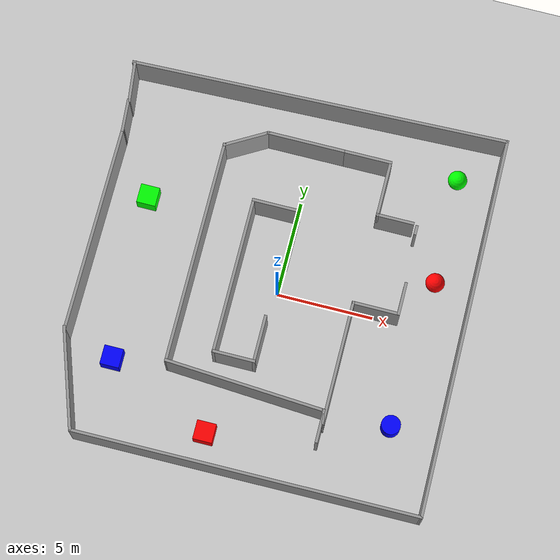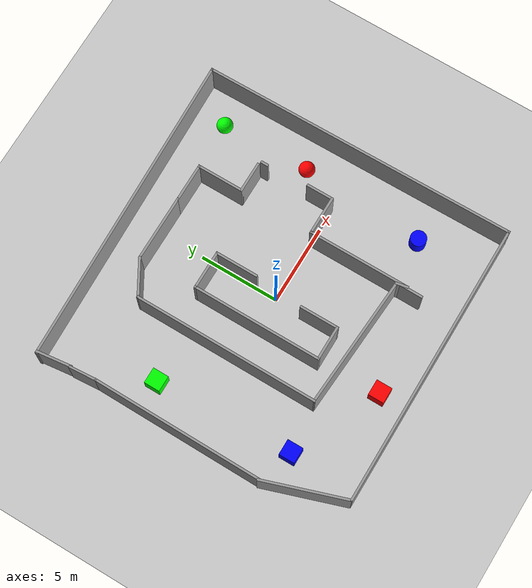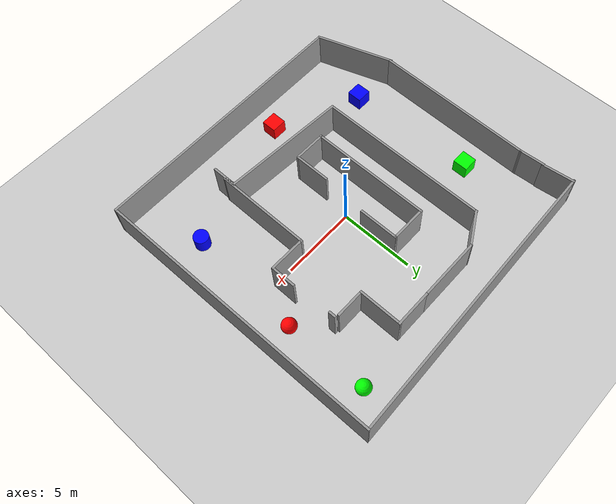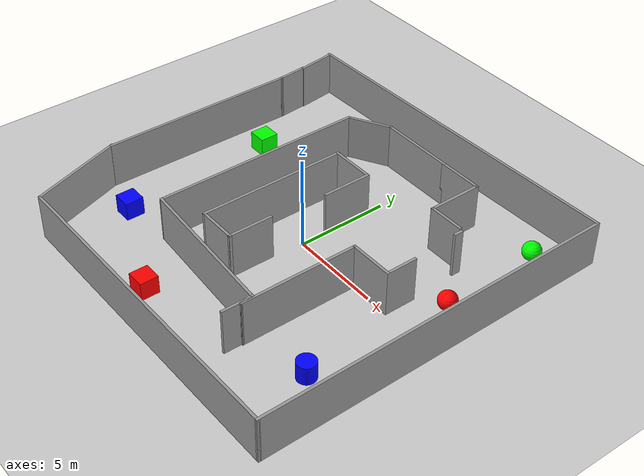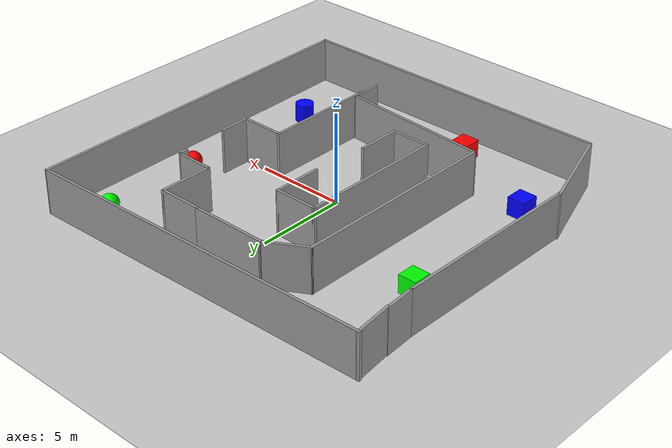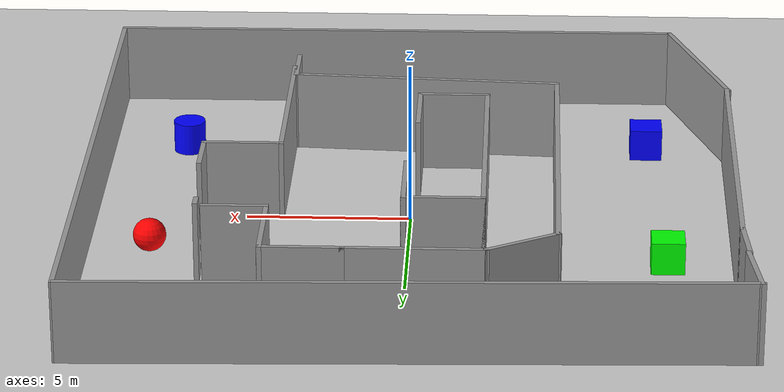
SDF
<sdf version="1.7">
 <world name="default">
  <light name="sun" type="directional">
   <pose>0 0 10 0 -0 0</pose>
   <diffuse>0.8 0.8 0.8 1</diffuse>
   <specular>0.2 0.2 0.2 1</specular>
   <attenuation>
    <range>1000</range>
    <constant>0.9</constant>
    <linear>0.01</linear>
    <quadratic>0.001</quadratic>
   </attenuation>
   <direction>-0.5 0.1 -0.9</direction>
   <spot><inner_angle>0</inner_angle><outer_angle>0</outer_angle><falloff>0</falloff></spot>
  </light>
  <model name="ground_plane">
   <static>1</static>
   <link name="link">
    <collision name="collision">
     <geometry><plane><normal>0 0 1</normal><size>100 100</size></plane></geometry>
     <surface>
      <contact><collide_bitmask>65535</collide_bitmask></contact>
      <friction><ode><mu>100</mu><mu2>50</mu2></ode></friction>
     </surface>
    </collision>
    <visual name="visual">
     <cast_shadows>0</cast_shadows>
     <geometry><plane><normal>0 0 1</normal><size>100 100</size></plane></geometry>
     <material>
      <script><uri>file://media/materials/scripts/gazebo.material</uri><name>Gazebo/Grey</name></script>
     </material>
    </visual>
   </link>
  </model>
  <gravity>0 0 -9.8</gravity>
  <magnetic_field>6e-06 2.3e-05 -4.2e-05</magnetic_field>
  <atmosphere type="adiabatic"/>
  <physics type="ode">
   <max_step_size>0.001</max_step_size>
   <real_time_factor>1</real_time_factor>
   <real_time_update_rate>1000</real_time_update_rate>
  </physics>
  <scene><ambient>0.4 0.4 0.4 1</ambient><background>0.7 0.7 0.7 1</background><shadows>1</shadows></scene>
  <audio><device>default</device></audio>
  <spherical_coordinates>
   <surface_model>EARTH_WGS84</surface_model>
   <latitude_deg>0</latitude_deg>
   <longitude_deg>0</longitude_deg>
   <elevation>0</elevation>
   <heading_deg>0</heading_deg>
  </spherical_coordinates>
  <model name="Untitled">
   <pose>-0.17042 0.212975 0 0 -0 0</pose>
   <link name="Wall_0">
    <collision name="Wall_0_Collision">
     <geometry><box><size>10.8717 0.15 2.5</size></box></geometry>
     <pose>0 0 1.25 0 -0 0</pose>
    </collision>
    <visual name="Wall_0_Visual">
     <pose>0 0 1.25 0 -0 0</pose>
     <geometry><box><size>10.8717 0.15 2.5</size></box></geometry>
     <material>
      <script><uri>file://media/materials/scripts/gazebo.material</uri><name>Gazebo/Grey</name></script>
      <ambient>1 1 1 1</ambient>
     </material>
     <meta><layer>0</layer></meta>
    </visual>
    <pose>-9.59969 0.333501 0 0 -0 1.56325</pose>
   </link>
   <link name="Wall_10">
    <collision name="Wall_10_Collision">
     <geometry><box><size>11.75 0.15 2.5</size></box></geometry>
     <pose>0 0 1.25 0 -0 0</pose>
    </collision>
    <visual name="Wall_10_Visual">
     <pose>0 0 1.25 0 -0 0</pose>
     <geometry><box><size>11.75 0.15 2.5</size></box></geometry>
     <material>
      <script><uri>file://media/materials/scripts/gazebo.material</uri><name>Gazebo/Grey</name></script>
      <ambient>1 1 1 1</ambient>
     </material>
     <meta><layer>0</layer></meta>
    </visual>
    <pose>-4.28993 0.433696 0 0 -0 -1.5708</pose>
   </link>
   <link name="Wall_12">
    <collision name="Wall_12_Collision">
     <geometry><box><size>2.5 0.15 2.5</size></box></geometry>
     <pose>0 0 1.25 0 -0 0</pose>
    </collision>
    <visual name="Wall_12_Visual">
     <pose>0 0 1.25 0 -0 0</pose>
     <geometry><box><size>2.5 0.15 2.5</size></box></geometry>
     <material>
      <script><uri>file://media/materials/scripts/gazebo.material</uri><name>Gazebo/Grey</name></script>
      <ambient>1 1 1 1</ambient>
     </material>
     <meta><layer>0</layer></meta>
    </visual>
    <pose>-3.27235 6.8212 0 0 -0 0.523599</pose>
   </link>
   <link name="Wall_14">
    <collision name="Wall_14_Collision">
     <geometry><box><size>8.43215 0.15 2.5</size></box></geometry>
     <pose>0 0 1.25 0 -0 0</pose>
    </collision>
    <visual name="Wall_14_Visual">
     <pose>0 0 1.25 0 -0 0</pose>
     <geometry><box><size>8.43215 0.15 2.5</size></box></geometry>
     <material>
      <script><uri>file://media/materials/scripts/gazebo.material</uri><name>Gazebo/Grey</name></script>
      <ambient>1 1 1 1</ambient>
     </material>
     <meta><layer>0</layer></meta>
    </visual>
    <pose>-0.157266 -5.63016 0 0 -0 -0.06376</pose>
   </link>
   <link name="Wall_15">
    <collision name="Wall_15_Collision">
     <geometry><box><size>0.80829 0.15 2.5</size></box></geometry>
     <pose>0 0 1.25 0 -0 0</pose>
    </collision>
    <visual name="Wall_15_Visual">
     <pose>0 0 1.25 0 -0 0</pose>
     <geometry><box><size>0.80829 0.15 2.5</size></box></geometry>
     <material>
      <script><uri>file://media/materials/scripts/gazebo.material</uri><name>Gazebo/Grey</name></script>
      <ambient>1 1 1 1</ambient>
     </material>
     <meta><layer>0</layer></meta>
    </visual>
    <pose>4.03531 -6.21766 0 0 -0 -1.38773</pose>
   </link>
   <link name="Wall_16">
    <collision name="Wall_16_Collision">
     <geometry><box><size>6.5 0.15 2.5</size></box></geometry>
     <pose>0 0 1.25 0 -0 0</pose>
    </collision>
    <visual name="Wall_16_Visual">
     <pose>0 0 1.25 0 -0 0</pose>
     <geometry><box><size>6.5 0.15 2.5</size></box></geometry>
     <material>
      <script><uri>file://media/materials/scripts/gazebo.material</uri><name>Gazebo/Grey</name></script>
      <ambient>1 1 1 1</ambient>
     </material>
     <meta><layer>0</layer></meta>
    </visual>
    <pose>4.09523 -3.3663 0 0 -0 1.5708</pose>
   </link>
   <link name="Wall_18">
    <collision name="Wall_18_Collision">
     <geometry><box><size>4.25 0.15 2.5</size></box></geometry>
     <pose>0 0 1.25 0 -0 0</pose>
    </collision>
    <visual name="Wall_18_Visual">
     <pose>0 0 1.25 0 -0 0</pose>
     <geometry><box><size>4.25 0.15 2.5</size></box></geometry>
     <material>
      <script><uri>file://media/materials/scripts/gazebo.material</uri><name>Gazebo/Grey</name></script>
      <ambient>1 1 1 1</ambient>
     </material>
     <meta><layer>0</layer></meta>
    </visual>
    <pose>-0.204765 7.4087 0 0 -0 0</pose>
   </link>
   <link name="Wall_19">
    <collision name="Wall_19_Collision">
     <geometry><box><size>2.5 0.15 2.5</size></box></geometry>
     <pose>0 0 1.25 0 -0 0</pose>
    </collision>
    <visual name="Wall_19_Visual">
     <pose>0 0 1.25 0 -0 0</pose>
     <geometry><box><size>2.5 0.15 2.5</size></box></geometry>
     <material>
      <script><uri>file://media/materials/scripts/gazebo.material</uri><name>Gazebo/Grey</name></script>
      <ambient>1 1 1 1</ambient>
     </material>
     <meta><layer>0</layer></meta>
    </visual>
    <pose>3.02024 7.4087 0 0 -0 0</pose>
   </link>
   <link name="Wall_2">
    <collision name="Wall_2_Collision">
     <geometry><box><size>5.35149 0.15 2.5</size></box></geometry>
     <pose>0 0 1.25 0 -0 0</pose>
    </collision>
    <visual name="Wall_2_Visual">
     <pose>0 0 1.25 0 -0 0</pose>
     <geometry><box><size>5.35149 0.15 2.5</size></box></geometry>
     <material>
      <script><uri>file://media/materials/scripts/gazebo.material</uri><name>Gazebo/Grey</name></script>
      <ambient>1 1 1 1</ambient>
     </material>
     <meta><layer>0</layer></meta>
    </visual>
    <pose>-8.85126 -7.45169 0 0 -0 -1.24624</pose>
   </link>
   <link name="Wall_20">
    <collision name="Wall_20_Collision">
     <geometry><box><size>3 0.15 2.5</size></box></geometry>
     <pose>0 0 1.25 0 -0 0</pose>
    </collision>
    <visual name="Wall_20_Visual">
     <pose>0 0 1.25 0 -0 0</pose>
     <geometry><box><size>3 0.15 2.5</size></box></geometry>
     <material>
      <script><uri>file://media/materials/scripts/gazebo.material</uri><name>Gazebo/Grey</name></script>
      <ambient>1 1 1 1</ambient>
     </material>
     <meta><layer>0</layer></meta>
    </visual>
    <pose>4.19524 5.9837 0 0 -0 -1.5708</pose>
   </link>
   <link name="Wall_22">
    <collision name="Wall_22_Collision">
     <geometry><box><size>2 0.15 2.5</size></box></geometry>
     <pose>0 0 1.25 0 -0 0</pose>
    </collision>
    <visual name="Wall_22_Visual">
     <pose>0 0 1.25 0 -0 0</pose>
     <geometry><box><size>2 0.15 2.5</size></box></geometry>
     <material>
      <script><uri>file://media/materials/scripts/gazebo.material</uri><name>Gazebo/Grey</name></script>
      <ambient>1 1 1 1</ambient>
     </material>
     <meta><layer>0</layer></meta>
    </visual>
    <pose>5.12024 4.5587 0 0 -0 0</pose>
   </link>
   <link name="Wall_24">
    <collision name="Wall_24_Collision">
     <geometry><box><size>2.5 0.15 2.5</size></box></geometry>
     <pose>0 0 1.25 0 -0 0</pose>
    </collision>
    <visual name="Wall_24_Visual">
     <pose>0 0 1.25 0 -0 0</pose>
     <geometry><box><size>2.5 0.15 2.5</size></box></geometry>
     <material>
      <script><uri>file://media/materials/scripts/gazebo.material</uri><name>Gazebo/Grey</name></script>
      <ambient>1 1 1 1</ambient>
     </material>
     <meta><layer>0</layer></meta>
    </visual>
    <pose>5.27023 -0.191304 0 0 -0 0</pose>
   </link>
   <link name="Wall_25">
    <collision name="Wall_25_Collision">
     <geometry><box><size>1.75 0.15 2.5</size></box></geometry>
     <pose>0 0 1.25 0 -0 0</pose>
    </collision>
    <visual name="Wall_25_Visual">
     <pose>0 0 1.25 0 -0 0</pose>
     <geometry><box><size>1.75 0.15 2.5</size></box></geometry>
     <material>
      <script><uri>file://media/materials/scripts/gazebo.material</uri><name>Gazebo/Grey</name></script>
      <ambient>1 1 1 1</ambient>
     </material>
     <meta><layer>0</layer></meta>
    </visual>
    <pose>6.44524 0.608696 0 0 -0 1.5708</pose>
   </link>
   <link name="Wall_28">
    <collision name="Wall_28_Collision">
     <geometry><box><size>0.5 0.15 2.5</size></box></geometry>
     <pose>0 0 1.25 0 -0 0</pose>
    </collision>
    <visual name="Wall_28_Visual">
     <pose>0 0 1.25 0 -0 0</pose>
     <geometry><box><size>0.5 0.15 2.5</size></box></geometry>
     <material>
      <script><uri>file://media/materials/scripts/gazebo.material</uri><name>Gazebo/Grey</name></script>
      <ambient>1 1 1 1</ambient>
     </material>
     <meta><layer>0</layer></meta>
    </visual>
    <pose>6.28537 4.25973 0 0 -0 -1.5708</pose>
   </link>
   <link name="Wall_30">
    <collision name="Wall_30_Collision">
     <geometry><box><size>8.25 0.15 2.5</size></box></geometry>
     <pose>0 0 1.25 0 -0 0</pose>
    </collision>
    <visual name="Wall_30_Visual">
     <pose>0 0 1.25 0 -0 0</pose>
     <geometry><box><size>8.25 0.15 2.5</size></box></geometry>
     <material>
      <script><uri>file://media/materials/scripts/gazebo.material</uri><name>Gazebo/Grey</name></script>
      <ambient>1 1 1 1</ambient>
     </material>
     <meta><layer>0</layer></meta>
    </visual>
    <pose>-2.10763 -0.284832 0 0 -0 -1.5708</pose>
   </link>
   <link name="Wall_31">
    <collision name="Wall_31_Collision">
     <geometry><box><size>2.25 0.15 2.5</size></box></geometry>
     <pose>0 0 1.25 0 -0 0</pose>
    </collision>
    <visual name="Wall_31_Visual">
     <pose>0 0 1.25 0 -0 0</pose>
     <geometry><box><size>2.25 0.15 2.5</size></box></geometry>
     <material>
      <script><uri>file://media/materials/scripts/gazebo.material</uri><name>Gazebo/Grey</name></script>
      <ambient>1 1 1 1</ambient>
     </material>
     <meta><layer>0</layer></meta>
    </visual>
    <pose>-1.05762 -4.33483 0 0 -0 0</pose>
   </link>
   <link name="Wall_33">
    <collision name="Wall_33_Collision">
     <geometry><box><size>2.5 0.15 2.5</size></box></geometry>
     <pose>0 0 1.25 0 -0 0</pose>
    </collision>
    <visual name="Wall_33_Visual">
     <pose>0 0 1.25 0 -0 0</pose>
     <geometry><box><size>2.5 0.15 2.5</size></box></geometry>
     <material>
      <script><uri>file://media/materials/scripts/gazebo.material</uri><name>Gazebo/Grey</name></script>
      <ambient>1 1 1 1</ambient>
     </material>
     <meta><layer>0</layer></meta>
    </visual>
    <pose>-0.932624 3.76517 0 0 -0 0</pose>
   </link>
   <link name="Wall_35">
    <collision name="Wall_35_Collision">
     <geometry><box><size>2.75 0.15 2.5</size></box></geometry>
     <pose>0 0 1.25 0 -0 0</pose>
    </collision>
    <visual name="Wall_35_Visual">
     <pose>0 0 1.25 0 -0 0</pose>
     <geometry><box><size>2.75 0.15 2.5</size></box></geometry>
     <material>
      <script><uri>file://media/materials/scripts/gazebo.material</uri><name>Gazebo/Grey</name></script>
      <ambient>1 1 1 1</ambient>
     </material>
     <meta><layer>0</layer></meta>
    </visual>
    <pose>0.242375 2.46517 0 0 -0 -1.5708</pose>
   </link>
   <link name="Wall_37">
    <collision name="Wall_37_Collision">
     <geometry><box><size>2.5 0.15 2.5</size></box></geometry>
     <pose>0 0 1.25 0 -0 0</pose>
    </collision>
    <visual name="Wall_37_Visual">
     <pose>0 0 1.25 0 -0 0</pose>
     <geometry><box><size>2.5 0.15 2.5</size></box></geometry>
     <material>
      <script><uri>file://media/materials/scripts/gazebo.material</uri><name>Gazebo/Grey</name></script>
      <ambient>1 1 1 1</ambient>
     </material>
     <meta><layer>0</layer></meta>
    </visual>
    <pose>-0.007625 -3.15983 0 0 -0 1.5708</pose>
   </link>
   <link name="Wall_39">
    <collision name="Wall_39_Collision">
     <geometry><box><size>1.76779 0.15 2.5</size></box></geometry>
     <pose>0 0 1.25 0 -0 0</pose>
    </collision>
    <visual name="Wall_39_Visual">
     <pose>0 0 1.25 0 -0 0</pose>
     <geometry><box><size>1.76779 0.15 2.5</size></box></geometry>
     <material>
      <script><uri>file://media/materials/scripts/gazebo.material</uri><name>Gazebo/Grey</name></script>
      <ambient>1 1 1 1</ambient>
     </material>
     <meta><layer>0</layer></meta>
    </visual>
    <pose>-9.61992 6.5008 0 0 -0 -1.49571</pose>
   </link>
   <link name="Wall_41">
    <collision name="Wall_41_Collision">
     <geometry><box><size>1.75 0.15 2.5</size></box></geometry>
     <pose>0 0 1.25 0 -0 0</pose>
    </collision>
    <visual name="Wall_41_Visual">
     <pose>0 0 1.25 0 -0 0</pose>
     <geometry><box><size>1.75 0.15 2.5</size></box></geometry>
     <material>
      <script><uri>file://media/materials/scripts/gazebo.material</uri><name>Gazebo/Grey</name></script>
      <ambient>1 1 1 1</ambient>
     </material>
     <meta><layer>0</layer></meta>
    </visual>
    <pose>4.01585 -6.69402 0 0 -0 -1.5708</pose>
   </link>
   <link name="Wall_5">
    <collision name="Wall_5_Collision">
     <geometry><box><size>18.0809 0.15 2.5</size></box></geometry>
     <pose>0 0 1.25 0 -0 0</pose>
    </collision>
    <visual name="Wall_5_Visual">
     <pose>0 0 1.25 0 -0 0</pose>
     <geometry><box><size>18.0809 0.15 2.5</size></box></geometry>
     <material>
      <script><uri>file://media/materials/scripts/gazebo.material</uri><name>Gazebo/Grey</name></script>
      <ambient>1 1 1 1</ambient>
     </material>
     <meta><layer>0</layer></meta>
    </visual>
    <pose>0.983989 -9.91666 0 0 -0 0.004512</pose>
   </link>
   <link name="Wall_6">
    <collision name="Wall_6_Collision">
     <geometry><box><size>19.9827 0.15 2.5</size></box></geometry>
     <pose>0 0 1.25 0 -0 0</pose>
    </collision>
    <visual name="Wall_6_Visual">
     <pose>0 0 1.25 0 -0 0</pose>
     <geometry><box><size>19.9827 0.15 2.5</size></box></geometry>
     <material>
      <script><uri>file://media/materials/scripts/gazebo.material</uri><name>Gazebo/Grey</name></script>
      <ambient>1 1 1 1</ambient>
     </material>
     <meta><layer>0</layer></meta>
    </visual>
    <pose>9.84244 0.039558 0 0 -0 1.58159</pose>
   </link>
   <link name="Wall_7">
    <collision name="Wall_7_Collision">
     <geometry><box><size>19.7882 0.15 2.5</size></box></geometry>
     <pose>0 0 1.25 0 -0 0</pose>
    </collision>
    <visual name="Wall_7_Visual">
     <pose>0 0 1.25 0 -0 0</pose>
     <geometry><box><size>19.7882 0.15 2.5</size></box></geometry>
     <material>
      <script><uri>file://media/materials/scripts/gazebo.material</uri><name>Gazebo/Grey</name></script>
      <ambient>1 1 1 1</ambient>
     </material>
     <meta><layer>0</layer></meta>
    </visual>
    <pose>-0.13309 9.67213 0 0 -0 -3.11275</pose>
   </link>
   <link name="Wall_8">
    <collision name="Wall_8_Collision">
     <geometry><box><size>2.24702 0.15 2.5</size></box></geometry>
     <pose>0 0 1.25 0 -0 0</pose>
    </collision>
    <visual name="Wall_8_Visual">
     <pose>0 0 1.25 0 -0 0</pose>
     <geometry><box><size>2.24702 0.15 2.5</size></box></geometry>
     <material>
      <script><uri>file://media/materials/scripts/gazebo.material</uri><name>Gazebo/Grey</name></script>
      <ambient>1 1 1 1</ambient>
     </material>
     <meta><layer>0</layer></meta>
    </visual>
    <pose>-9.76738 8.34818 0 0 -0 -1.44915</pose>
   </link>
   <static>1</static>
  </model>
  <model name="unit_box">
   <pose>-7.74134 3.27751 0.499995 1e-05 -0 0</pose>
   <link name="link">
    <inertial>
     <mass>1</mass>
     <inertia>
      <ixx>0.166667</ixx>
      <ixy>0</ixy>
      <ixz>0</ixz>
      <iyy>0.166667</iyy>
      <iyz>0</iyz>
      <izz>0.166667</izz>
     </inertia>
    </inertial>
    <collision name="collision"><geometry><box><size>1 1 1</size></box></geometry></collision>
    <visual name="visual">
     <geometry><box><size>1 1 1</size></box></geometry>
     <material><ambient>0 1 0 1</ambient><diffuse>0 1 0 1</diffuse></material>
    </visual>
   </link>
  </model>
  <model name="unit_box">
   <pose>-7.74134 3.27751 0.499995 1e-05 -0 0</pose>
   <link name="link">
    <inertial>
     <mass>1</mass>
     <inertia>
      <ixx>0.166667</ixx>
      <ixy>0</ixy>
      <ixz>0</ixz>
      <iyy>0.166667</iyy>
      <iyz>0</iyz>
      <izz>0.166667</izz>
     </inertia>
    </inertial>
    <collision name="collision"><geometry><box><size>1 1 1</size></box></geometry></collision>
    <visual name="visual">
     <geometry><box><size>1 1 1</size></box></geometry>
     <material><ambient>0 1 0 1</ambient><diffuse>0 1 0 1</diffuse></material>
    </visual>
   </link>
  </model>
  <model name="unit_box_0">
   <pose>-7.32522 -5.3898 0.499995 0 1e-05 0</pose>
   <link name="link">
    <inertial>
     <mass>1</mass>
     <inertia>
      <ixx>0.166667</ixx>
      <ixy>0</ixy>
      <ixz>0</ixz>
      <iyy>0.166667</iyy>
      <iyz>0</iyz>
      <izz>0.166667</izz>
     </inertia>
    </inertial>
    <collision name="collision"><geometry><box><size>1 1 1</size></box></geometry></collision>
    <visual name="visual">
     <geometry><box><size>1 1 1</size></box></geometry>
     <material><ambient>0 0 1 1</ambient><diffuse>0 0 1 1</diffuse></material>
    </visual>
   </link>
  </model>
  <model name="unit_box_1">
   <pose>-1.77327 -7.9509 0.499995 1e-05 -0 0</pose>
   <link name="link">
    <inertial>
     <mass>1</mass>
     <inertia>
      <ixx>0.166667</ixx>
      <ixy>0</ixy>
      <ixz>0</ixz>
      <iyy>0.166667</iyy>
      <iyz>0</iyz>
      <izz>0.166667</izz>
     </inertia>
    </inertial>
    <collision name="collision"><geometry><box><size>1 1 1</size></box></geometry></collision>
    <visual name="visual">
     <geometry><box><size>1 1 1</size></box></geometry>
     <material><ambient>1 0 0 1</ambient><diffuse>1 0 0 1</diffuse></material>
    </visual>
   </link>
  </model>
  <model name="unit_cylinder">
   <pose>7.25544 -5.30521 0.499992 -3e-06 2e-06 0</pose>
   <link name="link">
    <inertial>
     <mass>1</mass>
     <inertia><ixx>0.145833</ixx><ixy>0</ixy><ixz>0</ixz><iyy>0.145833</iyy><iyz>0</iyz><izz>0.125</izz></inertia>
    </inertial>
    <collision name="collision">
     <geometry><cylinder><radius>0.5</radius><length>1</length></cylinder></geometry>
    </collision>
    <visual name="visual">
     <geometry><cylinder><radius>0.5</radius><length>1</length></cylinder></geometry>
     <material><ambient>0 0 1 1</ambient><diffuse>0 0 1 1</diffuse></material>
    </visual>
   </link>
  </model>
  <model name="unit_sphere">
   <pose>7.58788 8.1289 0.5 0 -0 0</pose>
   <link name="link">
    <inertial>
     <mass>1</mass>
     <inertia><ixx>0.1</ixx><ixy>0</ixy><ixz>0</ixz><iyy>0.1</iyy><iyz>0</iyz><izz>0.1</izz></inertia>
    </inertial>
    <collision name="collision"><geometry><sphere><radius>0.5</radius></sphere></geometry></collision>
    <visual name="visual">
     <geometry><sphere><radius>0.5</radius></sphere></geometry>
     <material>
      <ambient>0 1 0 1</ambient>
      <diffuse>0 1 0 1</diffuse>
      <specular>0.1 0.1 0.1 1</specular>
      <emissive>0 0 0 1</emissive>
     </material>
    </visual>
   </link>
  </model>
  <model name="unit_sphere_0">
   <link name="link">
    <inertial>
     <mass>1</mass>
     <inertia><ixx>0.1</ixx><ixy>0</ixy><ixz>0</ixz><iyy>0.1</iyy><iyz>0</iyz><izz>0.1</izz></inertia>
    </inertial>
    <visual name="visual">
     <geometry><sphere><radius>0.5</radius></sphere></geometry>
     <material>
      <script><name>Gazebo/Grey</name><uri>file://media/materials/scripts/gazebo.material</uri></script>
      <shader type="pixel"><normal_map>__default__</normal_map></shader>
      <ambient>1 0 0 0</ambient>
      <diffuse>0.7 0.7 0.7 1</diffuse>
      <specular>0.01 0.01 0.01 1</specular>
      <emissive>0 0 0 1</emissive>
     </material>
    </visual>
    <collision name="collision">
     <geometry><sphere><radius>0.5</radius></sphere></geometry>
     <surface>
      <friction>
       <ode><mu>1</mu><mu2>1</mu2><fdir1>0 0 0</fdir1><slip1>0</slip1><slip2>0</slip2></ode>
       <torsional>
        <coefficient>1</coefficient>
        <patch_radius>0</patch_radius>
        <surface_radius>0</surface_radius>
        <use_patch_radius>1</use_patch_radius>
        <ode><slip>0</slip></ode>
       </torsional>
      </friction>
      <bounce><restitution_coefficient>0</restitution_coefficient><threshold>1e+06</threshold></bounce>
      <contact>
       <collide_without_contact>0</collide_without_contact>
       <collide_without_contact_bitmask>1</collide_without_contact_bitmask>
       <collide_bitmask>1</collide_bitmask>
       <ode>
        <soft_cfm>0</soft_cfm>
        <soft_erp>0.2</soft_erp>
        <kp>1e+13</kp>
        <kd>1</kd>
        <max_vel>0.01</max_vel>
        <min_depth>0</min_depth>
       </ode>
       <bullet>
        <split_impulse>1</split_impulse>
        <split_impulse_penetration_threshold>-0.01</split_impulse_penetration_threshold>
        <soft_cfm>0</soft_cfm>
        <soft_erp>0.2</soft_erp>
        <kp>1e+13</kp>
        <kd>1</kd>
       </bullet>
      </contact>
     </surface>
    </collision>
   </link>
   <static>0</static>
   <pose>7.72124 2.51673 0.5 0 -0 0</pose>
  </model>
 </world>
</sdf>
